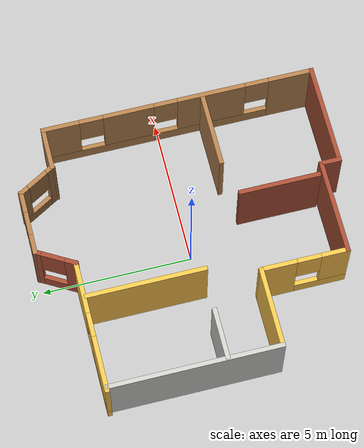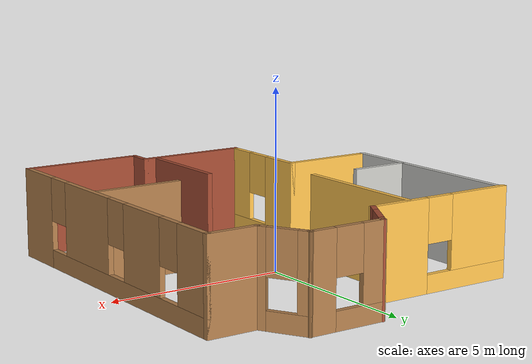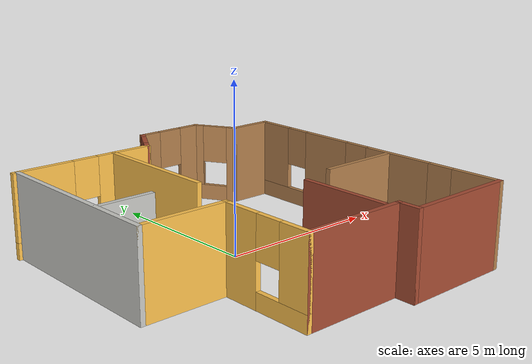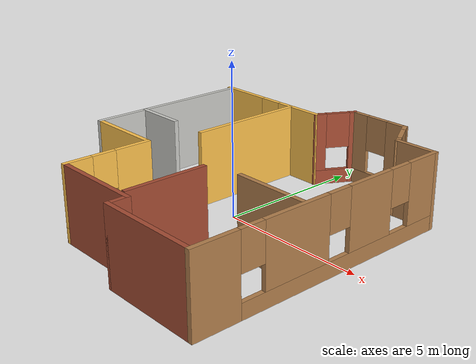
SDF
<?xml version='1.0'?>
<sdf version='1.6'>
  <model name='template'>
    <pose frame=''>0.034 -0.125207 0 0 -0 0</pose>
    <link name='Wall_0'>
      <collision name='Wall_0_Collision'>
        <geometry>
          <box>
            <size>5.75 0.15 2.5</size>
          </box>
        </geometry>
        <pose frame=''>0 0 1.25 0 -0 0</pose>
      </collision>
      <visual name='Wall_0_Visual'>
        <pose frame=''>0 0 1.25 0 -0 0</pose>
        <geometry>
          <box>
            <size>5.75 0.15 2.5</size>
          </box>
        </geometry>
        <material>
          <script>
            <uri>file://media/materials/scripts/gazebo.material</uri>
            <name>Gazebo/CeilingTiled</name>
          </script>
          <ambient>1 1 1 1</ambient>
        </material>
      </visual>
      <pose frame=''>-4.475 1.10171 0 0 0 -1.5708</pose>
    </link>
    <link name='Wall_1'>
      <collision name='Wall_1_Collision'>
        <geometry>
          <box>
            <size>2.75 0.15 2.5</size>
          </box>
        </geometry>
        <pose frame=''>0 0 1.25 0 -0 0</pose>
      </collision>
      <visual name='Wall_1_Visual'>
        <pose frame=''>0 0 1.25 0 -0 0</pose>
        <geometry>
          <box>
            <size>2.75 0.15 2.5</size>
          </box>
        </geometry>
        <material>
          <script>
            <uri>file://media/materials/scripts/gazebo.material</uri>
            <name>Gazebo/Grey</name>
          </script>
          <ambient>1 0.764706 0.305882 1</ambient>
        </material>
      </visual>
      <pose frame=''>-3.175 -1.69829 0 0 -0 0</pose>
    </link>
    <link name='Wall_10'>
      <pose frame=''>0.1125 4.53627 0 0 0 -2.0944</pose>
      <visual name='Wall_10_Visual_0'>
        <pose frame=''>-0.614192 0 1.25 0 -0 0</pose>
        <geometry>
          <box>
            <size>0.271616 0.15 2.5</size>
          </box>
        </geometry>
        <material>
          <script>
            <uri>file://media/materials/scripts/gazebo.material</uri>
            <name>Gazebo/Bricks</name>
          </script>
          <ambient>1 1 1 1</ambient>
        </material>
      </visual>
      <collision name='Wall_10_Collision_0'>
        <geometry>
          <box>
            <size>0.271616 0.15 2.5</size>
          </box>
        </geometry>
        <pose frame=''>-0.614192 0 1.25 0 -0 0</pose>
      </collision>
      <visual name='Wall_10_Visual_1'>
        <pose frame=''>0.135808 0 0.25 0 -0 0</pose>
        <geometry>
          <box>
            <size>1.22838 0.15 0.5</size>
          </box>
        </geometry>
        <material>
          <script>
            <uri>file://media/materials/scripts/gazebo.material</uri>
            <name>Gazebo/Bricks</name>
          </script>
          <ambient>1 1 1 1</ambient>
        </material>
      </visual>
      <collision name='Wall_10_Collision_1'>
        <geometry>
          <box>
            <size>1.22838 0.15 0.5</size>
          </box>
        </geometry>
        <pose frame=''>0.135808 0 0.25 0 -0 0</pose>
      </collision>
      <visual name='Wall_10_Visual_2'>
        <pose frame=''>0.535808 0 1.5 0 -0 0</pose>
        <geometry>
          <box>
            <size>0.428384 0.15 2</size>
          </box>
        </geometry>
        <material>
          <script>
            <uri>file://media/materials/scripts/gazebo.material</uri>
            <name>Gazebo/Bricks</name>
          </script>
          <ambient>1 1 1 1</ambient>
        </material>
      </visual>
      <collision name='Wall_10_Collision_2'>
        <geometry>
          <box>
            <size>0.428384 0.15 2</size>
          </box>
        </geometry>
        <pose frame=''>0.535808 0 1.5 0 -0 0</pose>
      </collision>
      <visual name='Wall_10_Visual_3'>
        <pose frame=''>-0.078384 0 1.9 0 -0 0</pose>
        <geometry>
          <box>
            <size>0.8 0.15 1.2</size>
          </box>
        </geometry>
        <material>
          <script>
            <uri>file://media/materials/scripts/gazebo.material</uri>
            <name>Gazebo/Bricks</name>
          </script>
          <ambient>1 1 1 1</ambient>
        </material>
      </visual>
      <collision name='Wall_10_Collision_3'>
        <geometry>
          <box>
            <size>0.8 0.15 1.2</size>
          </box>
        </geometry>
        <pose frame=''>-0.078384 0 1.9 0 -0 0</pose>
      </collision>
    </link>
    <link name='Wall_11'>
      <pose frame=''>-2.4 3.95171 0 0 -0 3.14159</pose>
      <visual name='Wall_11_Visual_0'>
        <pose frame=''>-1.33975 0 1.25 0 -0 0</pose>
        <geometry>
          <box>
            <size>1.8205 0.15 2.5</size>
          </box>
        </geometry>
        <material>
          <script>
            <uri>file://media/materials/scripts/gazebo.material</uri>
            <name>Gazebo/Grey</name>
          </script>
          <ambient>1 0.764706 0.305882 1</ambient>
        </material>
      </visual>
      <collision name='Wall_11_Collision_0'>
        <geometry>
          <box>
            <size>1.8205 0.15 2.5</size>
          </box>
        </geometry>
        <pose frame=''>-1.33975 0 1.25 0 -0 0</pose>
      </collision>
      <visual name='Wall_11_Visual_1'>
        <pose frame=''>0.91025 0 0.25 0 -0 0</pose>
        <geometry>
          <box>
            <size>2.6795 0.15 0.5</size>
          </box>
        </geometry>
        <material>
          <script>
            <uri>file://media/materials/scripts/gazebo.material</uri>
            <name>Gazebo/Grey</name>
          </script>
          <ambient>1 0.764706 0.305882 1</ambient>
        </material>
      </visual>
      <collision name='Wall_11_Collision_1'>
        <geometry>
          <box>
            <size>2.6795 0.15 0.5</size>
          </box>
        </geometry>
        <pose frame=''>0.91025 0 0.25 0 -0 0</pose>
      </collision>
      <visual name='Wall_11_Visual_2'>
        <pose frame=''>1.31025 0 1.5 0 -0 0</pose>
        <geometry>
          <box>
            <size>1.8795 0.15 2</size>
          </box>
        </geometry>
        <material>
          <script>
            <uri>file://media/materials/scripts/gazebo.material</uri>
            <name>Gazebo/Grey</name>
          </script>
          <ambient>1 0.764706 0.305882 1</ambient>
        </material>
      </visual>
      <collision name='Wall_11_Collision_2'>
        <geometry>
          <box>
            <size>1.8795 0.15 2</size>
          </box>
        </geometry>
        <pose frame=''>1.31025 0 1.5 0 -0 0</pose>
      </collision>
      <visual name='Wall_11_Visual_3'>
        <pose frame=''>-0.0295 0 1.9 0 -0 0</pose>
        <geometry>
          <box>
            <size>0.8 0.15 1.2</size>
          </box>
        </geometry>
        <material>
          <script>
            <uri>file://media/materials/scripts/gazebo.material</uri>
            <name>Gazebo/Grey</name>
          </script>
          <ambient>1 0.764706 0.305882 1</ambient>
        </material>
      </visual>
      <collision name='Wall_11_Collision_3'>
        <geometry>
          <box>
            <size>0.8 0.15 1.2</size>
          </box>
        </geometry>
        <pose frame=''>-0.0295 0 1.9 0 -0 0</pose>
      </collision>
    </link>
    <link name='Wall_13'>
      <collision name='Wall_13_Collision'>
        <geometry>
          <box>
            <size>4 0.15 2.5</size>
          </box>
        </geometry>
        <pose frame=''>0 0 1.25 0 -0 0</pose>
      </collision>
      <visual name='Wall_13_Visual'>
        <pose frame=''>0 0 1.25 0 -0 0</pose>
        <geometry>
          <box>
            <size>4 0.15 2.5</size>
          </box>
        </geometry>
        <material>
          <script>
            <uri>file://media/materials/scripts/gazebo.material</uri>
            <name>Gazebo/Grey</name>
          </script>
          <ambient>1 0.764706 0.305882 1</ambient>
        </material>
      </visual>
      <pose frame=''>-1.4045 1.94221 0 0 0 -1.5708</pose>
    </link>
    <link name='Wall_15'>
      <collision name='Wall_15_Collision'>
        <geometry>
          <box>
            <size>1.75 0.15 2.5</size>
          </box>
        </geometry>
        <pose frame=''>0 0 1.25 0 -0 0</pose>
      </collision>
      <visual name='Wall_15_Visual'>
        <pose frame=''>0 0 1.25 0 -0 0</pose>
        <geometry>
          <box>
            <size>1.75 0.15 2.5</size>
          </box>
        </geometry>
        <material>
          <script>
            <uri>file://media/materials/scripts/gazebo.material</uri>
            <name>Gazebo/CeilingTiled</name>
          </script>
          <ambient>1 1 1 1</ambient>
        </material>
      </visual>
      <pose frame=''>-3.6405 0.072207 0 0 -0 0</pose>
    </link>
    <link name='Wall_17'>
      <collision name='Wall_17_Collision'>
        <geometry>
          <box>
            <size>2.75 0.15 2.5</size>
          </box>
        </geometry>
        <pose frame=''>0 0 1.25 0 -0 0</pose>
      </collision>
      <visual name='Wall_17_Visual'>
        <pose frame=''>0 0 1.25 0 -0 0</pose>
        <geometry>
          <box>
            <size>2.75 0.15 2.5</size>
          </box>
        </geometry>
        <material>
          <script>
            <uri>file://media/materials/scripts/gazebo.material</uri>
            <name>Gazebo/Bricks</name>
          </script>
          <ambient>1 1 1 1</ambient>
        </material>
      </visual>
      <pose frame=''>0.8725 -3.05629 0 0 0 -1.5708</pose>
    </link>
    <link name='Wall_19'>
      <collision name='Wall_19_Collision'>
        <geometry>
          <box>
            <size>2.5 0.15 2.5</size>
          </box>
        </geometry>
        <pose frame=''>0 0 1.25 0 -0 0</pose>
      </collision>
      <visual name='Wall_19_Visual'>
        <pose frame=''>0 0 1.25 0 -0 0</pose>
        <geometry>
          <box>
            <size>2.5 0.15 2.5</size>
          </box>
        </geometry>
        <material>
          <script>
            <uri>file://media/materials/scripts/gazebo.material</uri>
            <name>Gazebo/Wood</name>
          </script>
          <ambient>1 1 1 1</ambient>
        </material>
      </visual>
      <pose frame=''>3.255 -1.41129 0 0 -0 0</pose>
    </link>
    <link name='Wall_2'>
      <pose frame=''>-1.875 -3.12329 0 0 0 -1.5708</pose>
      <visual name='Wall_2_Visual_0'>
        <pose frame=''>-0.8745 0 1.25 0 -0 0</pose>
        <geometry>
          <box>
            <size>1.251 0.15 2.5</size>
          </box>
        </geometry>
        <material>
          <script>
            <uri>file://media/materials/scripts/gazebo.material</uri>
            <name>Gazebo/Grey</name>
          </script>
          <ambient>1 0.764706 0.305882 1</ambient>
        </material>
      </visual>
      <collision name='Wall_2_Collision_0'>
        <geometry>
          <box>
            <size>1.251 0.15 2.5</size>
          </box>
        </geometry>
        <pose frame=''>-0.8745 0 1.25 0 -0 0</pose>
      </collision>
      <visual name='Wall_2_Visual_1'>
        <pose frame=''>0.6255 0 0.25 0 -0 0</pose>
        <geometry>
          <box>
            <size>1.749 0.15 0.5</size>
          </box>
        </geometry>
        <material>
          <script>
            <uri>file://media/materials/scripts/gazebo.material</uri>
            <name>Gazebo/Grey</name>
          </script>
          <ambient>1 0.764706 0.305882 1</ambient>
        </material>
      </visual>
      <collision name='Wall_2_Collision_1'>
        <geometry>
          <box>
            <size>1.749 0.15 0.5</size>
          </box>
        </geometry>
        <pose frame=''>0.6255 0 0.25 0 -0 0</pose>
      </collision>
      <visual name='Wall_2_Visual_2'>
        <pose frame=''>1.0255 0 1.5 0 -0 0</pose>
        <geometry>
          <box>
            <size>0.949 0.15 2</size>
          </box>
        </geometry>
        <material>
          <script>
            <uri>file://media/materials/scripts/gazebo.material</uri>
            <name>Gazebo/Grey</name>
          </script>
          <ambient>1 0.764706 0.305882 1</ambient>
        </material>
      </visual>
      <collision name='Wall_2_Collision_2'>
        <geometry>
          <box>
            <size>0.949 0.15 2</size>
          </box>
        </geometry>
        <pose frame=''>1.0255 0 1.5 0 -0 0</pose>
      </collision>
      <visual name='Wall_2_Visual_3'>
        <pose frame=''>0.151 0 1.9 0 -0 0</pose>
        <geometry>
          <box>
            <size>0.8 0.15 1.2</size>
          </box>
        </geometry>
        <material>
          <script>
            <uri>file://media/materials/scripts/gazebo.material</uri>
            <name>Gazebo/Grey</name>
          </script>
          <ambient>1 0.764706 0.305882 1</ambient>
        </material>
      </visual>
      <collision name='Wall_2_Collision_3'>
        <geometry>
          <box>
            <size>0.8 0.15 1.2</size>
          </box>
        </geometry>
        <pose frame=''>0.151 0 1.9 0 -0 0</pose>
      </collision>
    </link>
    <link name='Wall_3'>
      <collision name='Wall_3_Collision'>
        <geometry>
          <box>
            <size>3.25 0.15 2.5</size>
          </box>
        </geometry>
        <pose frame=''>0 0 1.25 0 -0 0</pose>
      </collision>
      <visual name='Wall_3_Visual'>
        <pose frame=''>0 0 1.25 0 -0 0</pose>
        <geometry>
          <box>
            <size>3.25 0.15 2.5</size>
          </box>
        </geometry>
        <material>
          <script>
            <uri>file://media/materials/scripts/gazebo.material</uri>
            <name>Gazebo/Bricks</name>
          </script>
          <ambient>1 1 1 1</ambient>
        </material>
      </visual>
      <pose frame=''>-0.325 -4.54829 0 0 -0 0</pose>
    </link>
    <link name='Wall_4'>
      <collision name='Wall_4_Collision'>
        <geometry>
          <box>
            <size>0.75 0.15 2.5</size>
          </box>
        </geometry>
        <pose frame=''>0 0 1.25 0 -0 0</pose>
      </collision>
      <visual name='Wall_4_Visual'>
        <pose frame=''>0 0 1.25 0 -0 0</pose>
        <geometry>
          <box>
            <size>0.75 0.15 2.5</size>
          </box>
        </geometry>
        <material>
          <script>
            <uri>file://media/materials/scripts/gazebo.material</uri>
            <name>Gazebo/Bricks</name>
          </script>
          <ambient>1 1 1 1</ambient>
        </material>
      </visual>
      <pose frame=''>1.225 -4.84829 0 0 0 -1.5708</pose>
    </link>
    <link name='Wall_5'>
      <collision name='Wall_5_Collision'>
        <geometry>
          <box>
            <size>3.5 0.15 2.5</size>
          </box>
        </geometry>
        <pose frame=''>0 0 1.25 0 -0 0</pose>
      </collision>
      <visual name='Wall_5_Visual'>
        <pose frame=''>0 0 1.25 0 -0 0</pose>
        <geometry>
          <box>
            <size>3.5 0.15 2.5</size>
          </box>
        </geometry>
        <material>
          <script>
            <uri>file://media/materials/scripts/gazebo.material</uri>
            <name>Gazebo/Bricks</name>
          </script>
          <ambient>1 1 1 1</ambient>
        </material>
      </visual>
      <pose frame=''>2.9 -5.14829 0 0 -0 0</pose>
    </link>
    <link name='Wall_6'>
      <pose frame=''>4.575 -0.598293 0 0 -0 1.5708</pose>
      <visual name='Wall_6_Visual_0'>
        <pose frame=''>-3.8505 0 1.25 0 -0 0</pose>
        <geometry>
          <box>
            <size>1.549 0.15 2.5</size>
          </box>
        </geometry>
        <material>
          <script>
            <uri>file://media/materials/scripts/gazebo.material</uri>
            <name>Gazebo/Wood</name>
          </script>
          <ambient>1 1 1 1</ambient>
        </material>
      </visual>
      <collision name='Wall_6_Collision_0'>
        <geometry>
          <box>
            <size>1.549 0.15 2.5</size>
          </box>
        </geometry>
        <pose frame=''>-3.8505 0 1.25 0 -0 0</pose>
      </collision>
      <visual name='Wall_6_Visual_1'>
        <pose frame=''>0.7745 0 0.25 0 -0 0</pose>
        <geometry>
          <box>
            <size>7.701 0.15 0.5</size>
          </box>
        </geometry>
        <material>
          <script>
            <uri>file://media/materials/scripts/gazebo.material</uri>
            <name>Gazebo/Wood</name>
          </script>
          <ambient>1 1 1 1</ambient>
        </material>
      </visual>
      <collision name='Wall_6_Collision_1'>
        <geometry>
          <box>
            <size>7.701 0.15 0.5</size>
          </box>
        </geometry>
        <pose frame=''>0.7745 0 0.25 0 -0 0</pose>
      </collision>
      <visual name='Wall_6_Visual_2'>
        <pose frame=''>-1.1235 0 1.5 0 -0 0</pose>
        <geometry>
          <box>
            <size>2.305 0.15 2</size>
          </box>
        </geometry>
        <material>
          <script>
            <uri>file://media/materials/scripts/gazebo.material</uri>
            <name>Gazebo/Wood</name>
          </script>
          <ambient>1 1 1 1</ambient>
        </material>
      </visual>
      <collision name='Wall_6_Collision_2'>
        <geometry>
          <box>
            <size>2.305 0.15 2</size>
          </box>
        </geometry>
        <pose frame=''>-1.1235 0 1.5 0 -0 0</pose>
      </collision>
      <visual name='Wall_6_Visual_3'>
        <pose frame=''>1.68825 0 1.5 0 -0 0</pose>
        <geometry>
          <box>
            <size>1.7185 0.15 2</size>
          </box>
        </geometry>
        <material>
          <script>
            <uri>file://media/materials/scripts/gazebo.material</uri>
            <name>Gazebo/Wood</name>
          </script>
          <ambient>1 1 1 1</ambient>
        </material>
      </visual>
      <collision name='Wall_6_Collision_3'>
        <geometry>
          <box>
            <size>1.7185 0.15 2</size>
          </box>
        </geometry>
        <pose frame=''>1.68825 0 1.5 0 -0 0</pose>
      </collision>
      <visual name='Wall_6_Visual_4'>
        <pose frame=''>3.98625 0 1.5 0 -0 0</pose>
        <geometry>
          <box>
            <size>1.2775 0.15 2</size>
          </box>
        </geometry>
        <material>
          <script>
            <uri>file://media/materials/scripts/gazebo.material</uri>
            <name>Gazebo/Wood</name>
          </script>
          <ambient>1 1 1 1</ambient>
        </material>
      </visual>
      <collision name='Wall_6_Collision_4'>
        <geometry>
          <box>
            <size>1.2775 0.15 2</size>
          </box>
        </geometry>
        <pose frame=''>3.98625 0 1.5 0 -0 0</pose>
      </collision>
      <visual name='Wall_6_Visual_5'>
        <pose frame=''>-2.676 0 1.9 0 -0 0</pose>
        <geometry>
          <box>
            <size>0.8 0.15 1.2</size>
          </box>
        </geometry>
        <material>
          <script>
            <uri>file://media/materials/scripts/gazebo.material</uri>
            <name>Gazebo/Wood</name>
          </script>
          <ambient>1 1 1 1</ambient>
        </material>
      </visual>
      <collision name='Wall_6_Collision_5'>
        <geometry>
          <box>
            <size>0.8 0.15 1.2</size>
          </box>
        </geometry>
        <pose frame=''>-2.676 0 1.9 0 -0 0</pose>
      </collision>
      <visual name='Wall_6_Visual_6'>
        <pose frame=''>0.429 0 1.9 0 -0 0</pose>
        <geometry>
          <box>
            <size>0.8 0.15 1.2</size>
          </box>
        </geometry>
        <material>
          <script>
            <uri>file://media/materials/scripts/gazebo.material</uri>
            <name>Gazebo/Wood</name>
          </script>
          <ambient>1 1 1 1</ambient>
        </material>
      </visual>
      <collision name='Wall_6_Collision_6'>
        <geometry>
          <box>
            <size>0.8 0.15 1.2</size>
          </box>
        </geometry>
        <pose frame=''>0.429 0 1.9 0 -0 0</pose>
      </collision>
      <visual name='Wall_6_Visual_7'>
        <pose frame=''>2.9475 0 1.9 0 -0 0</pose>
        <geometry>
          <box>
            <size>0.8 0.15 1.2</size>
          </box>
        </geometry>
        <material>
          <script>
            <uri>file://media/materials/scripts/gazebo.material</uri>
            <name>Gazebo/Wood</name>
          </script>
          <ambient>1 1 1 1</ambient>
        </material>
      </visual>
      <collision name='Wall_6_Collision_7'>
        <geometry>
          <box>
            <size>0.8 0.15 1.2</size>
          </box>
        </geometry>
        <pose frame=''>2.9475 0 1.9 0 -0 0</pose>
      </collision>
    </link>
    <link name='Wall_7'>
      <collision name='Wall_7_Collision'>
        <geometry>
          <box>
            <size>1.5 0.15 2.5</size>
          </box>
        </geometry>
        <pose frame=''>0 0 1.25 0 -0 0</pose>
      </collision>
      <visual name='Wall_7_Visual'>
        <pose frame=''>0 0 1.25 0 -0 0</pose>
        <geometry>
          <box>
            <size>1.5 0.15 2.5</size>
          </box>
        </geometry>
        <material>
          <script>
            <uri>file://media/materials/scripts/gazebo.material</uri>
            <name>Gazebo/Wood</name>
          </script>
          <ambient>1 1 1 1</ambient>
        </material>
      </visual>
      <pose frame=''>3.9 3.95171 0 0 -0 3.14159</pose>
    </link>
    <link name='Wall_8'>
      <pose frame=''>2.8875 4.53627 0 0 -0 2.0944</pose>
      <visual name='Wall_8_Visual_0'>
        <pose frame=''>-0.584308 0 1.25 0 -0 0</pose>
        <geometry>
          <box>
            <size>0.331384 0.15 2.5</size>
          </box>
        </geometry>
        <material>
          <script>
            <uri>file://media/materials/scripts/gazebo.material</uri>
            <name>Gazebo/Wood</name>
          </script>
          <ambient>1 1 1 1</ambient>
        </material>
      </visual>
      <collision name='Wall_8_Collision_0'>
        <geometry>
          <box>
            <size>0.331384 0.15 2.5</size>
          </box>
        </geometry>
        <pose frame=''>-0.584308 0 1.25 0 -0 0</pose>
      </collision>
      <visual name='Wall_8_Visual_1'>
        <pose frame=''>0.165692 0 0.25 0 -0 0</pose>
        <geometry>
          <box>
            <size>1.16862 0.15 0.5</size>
          </box>
        </geometry>
        <material>
          <script>
            <uri>file://media/materials/scripts/gazebo.material</uri>
            <name>Gazebo/Wood</name>
          </script>
          <ambient>1 1 1 1</ambient>
        </material>
      </visual>
      <collision name='Wall_8_Collision_1'>
        <geometry>
          <box>
            <size>1.16862 0.15 0.5</size>
          </box>
        </geometry>
        <pose frame=''>0.165692 0 0.25 0 -0 0</pose>
      </collision>
      <visual name='Wall_8_Visual_2'>
        <pose frame=''>0.565692 0 1.5 0 -0 0</pose>
        <geometry>
          <box>
            <size>0.368616 0.15 2</size>
          </box>
        </geometry>
        <material>
          <script>
            <uri>file://media/materials/scripts/gazebo.material</uri>
            <name>Gazebo/Wood</name>
          </script>
          <ambient>1 1 1 1</ambient>
        </material>
      </visual>
      <collision name='Wall_8_Collision_2'>
        <geometry>
          <box>
            <size>0.368616 0.15 2</size>
          </box>
        </geometry>
        <pose frame=''>0.565692 0 1.5 0 -0 0</pose>
      </collision>
      <visual name='Wall_8_Visual_3'>
        <pose frame=''>-0.018616 0 1.9 0 -0 0</pose>
        <geometry>
          <box>
            <size>0.8 0.15 1.2</size>
          </box>
        </geometry>
        <material>
          <script>
            <uri>file://media/materials/scripts/gazebo.material</uri>
            <name>Gazebo/Wood</name>
          </script>
          <ambient>1 1 1 1</ambient>
        </material>
      </visual>
      <collision name='Wall_8_Collision_3'>
        <geometry>
          <box>
            <size>0.8 0.15 1.2</size>
          </box>
        </geometry>
        <pose frame=''>-0.018616 0 1.9 0 -0 0</pose>
      </collision>
    </link>
    <link name='Wall_9'>
      <pose frame=''>1.5 5.12084 0 0 -0 3.14159</pose>
      <visual name='Wall_9_Visual_0'>
        <pose frame=''>-0.742 0 1.25 0 -0 0</pose>
        <geometry>
          <box>
            <size>0.766 0.15 2.5</size>
          </box>
        </geometry>
        <material>
          <script>
            <uri>file://media/materials/scripts/gazebo.material</uri>
            <name>Gazebo/Wood</name>
          </script>
          <ambient>1 1 1 1</ambient>
        </material>
      </visual>
      <collision name='Wall_9_Collision_0'>
        <geometry>
          <box>
            <size>0.766 0.15 2.5</size>
          </box>
        </geometry>
        <pose frame=''>-0.742 0 1.25 0 -0 0</pose>
      </collision>
      <visual name='Wall_9_Visual_1'>
        <pose frame=''>0.383 0 0.25 0 -0 0</pose>
        <geometry>
          <box>
            <size>1.484 0.15 0.5</size>
          </box>
        </geometry>
        <material>
          <script>
            <uri>file://media/materials/scripts/gazebo.material</uri>
            <name>Gazebo/Wood</name>
          </script>
          <ambient>1 1 1 1</ambient>
        </material>
      </visual>
      <collision name='Wall_9_Collision_1'>
        <geometry>
          <box>
            <size>1.484 0.15 0.5</size>
          </box>
        </geometry>
        <pose frame=''>0.383 0 0.25 0 -0 0</pose>
      </collision>
      <visual name='Wall_9_Visual_2'>
        <pose frame=''>0.783 0 1.5 0 -0 0</pose>
        <geometry>
          <box>
            <size>0.684 0.15 2</size>
          </box>
        </geometry>
        <material>
          <script>
            <uri>file://media/materials/scripts/gazebo.material</uri>
            <name>Gazebo/Wood</name>
          </script>
          <ambient>1 1 1 1</ambient>
        </material>
      </visual>
      <collision name='Wall_9_Collision_2'>
        <geometry>
          <box>
            <size>0.684 0.15 2</size>
          </box>
        </geometry>
        <pose frame=''>0.783 0 1.5 0 -0 0</pose>
      </collision>
      <visual name='Wall_9_Visual_3'>
        <pose frame=''>0.041 0 1.9 0 -0 0</pose>
        <geometry>
          <box>
            <size>0.8 0.15 1.2</size>
          </box>
        </geometry>
        <material>
          <script>
            <uri>file://media/materials/scripts/gazebo.material</uri>
            <name>Gazebo/Wood</name>
          </script>
          <ambient>1 1 1 1</ambient>
        </material>
      </visual>
      <collision name='Wall_9_Collision_3'>
        <geometry>
          <box>
            <size>0.8 0.15 1.2</size>
          </box>
        </geometry>
        <pose frame=''>0.041 0 1.9 0 -0 0</pose>
      </collision>
    </link>
    <static>1</static>
  </model>
</sdf>
